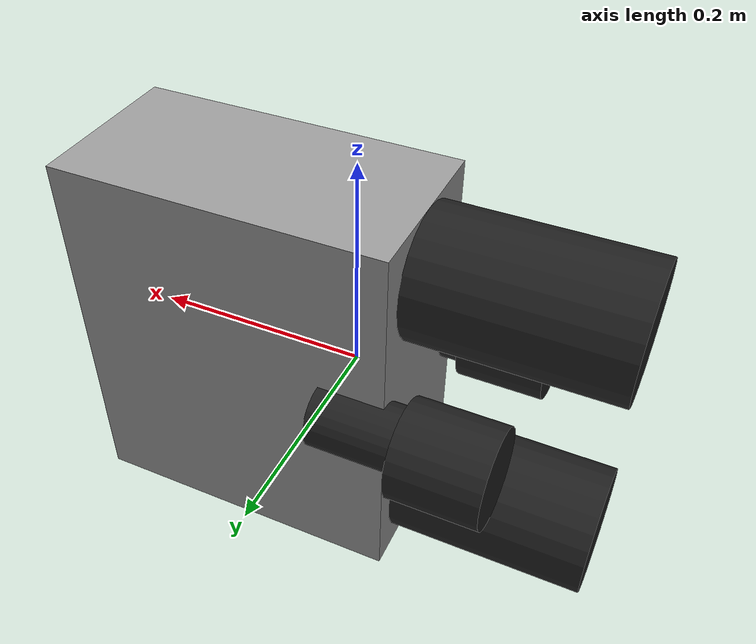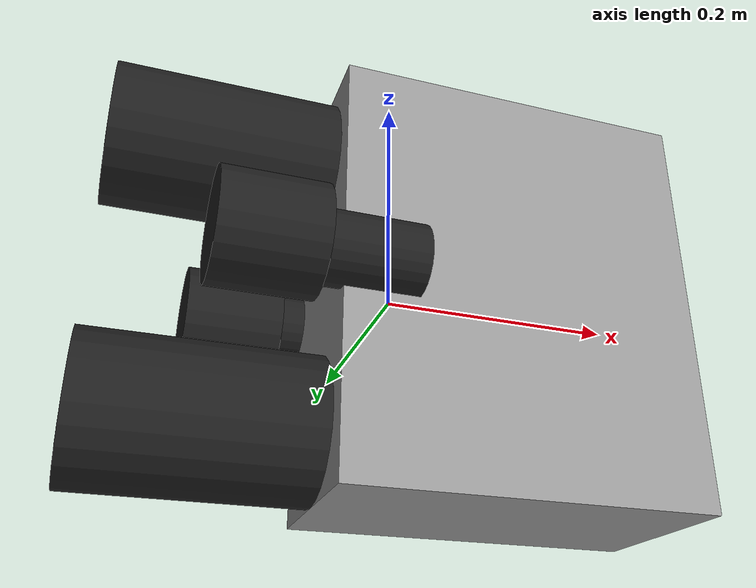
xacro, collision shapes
<?xml version="1.0"?>
<robot name="x3_rov" xmlns:xacro="http://www.ros.org/wiki/xacro">

	<!-- includes -->
	<xacro:include filename="$(find x3_sim)/urdf/helpers.xacro" />
	<xacro:include filename="$(find x3_sim)/urdf/x3_components.xacro" />
	<xacro:include filename="$(find x3_sim)/urdf/x3_sensors.xacro" />

	<!-- properties/variables -->
	<xacro:arg name="debug" default="0"/>
	<xacro:arg name="namespace" default="x3_rov"/>
	<xacro:arg name="inertial_reference_frame" default="world"/>
	<xacro:property name="neutrally_buoyant" value="0" />

	<xacro:property name="x3_length" value="0.485" />
	<xacro:property name="x3_width"  value="0.257" />
	<xacro:property name="x3_height" value="0.354" />

	<!-- center of balance xyz -->
	<xacro:property name="x3_cobx"	 value="0.023465" />
	<xacro:property name="x3_coby"	 value="0"        />
	<xacro:property name="x3_cobz"	 value="0.06848"  />
	<xacro:property name="x3_cob"	 value="${x3_cobx} ${x3_coby} ${x3_cobz}" />
	<xacro:property name="x3_mass"   value="8.6" />      <!-- kg -->
	<!-- calculations are based roughly on volume distribution -->
	<xacro:property name="x3_m_main"     value="${x3_mass * 0.66}" />
	<xacro:property name="x3_m_fin"      value="${x3_mass * 0.14}" />
	<xacro:property name="x3_m_thruster" value="${x3_mass * 0.03}" />

	<!-- * * * LINK DEFINITIONS * * * -->

	<!-- Dummy link to suppress warnings about root link inertia -->
	<!-- VERY IMPORTANT! Base link NEEDS to be target of hydrodynamic calculations -->
	<link name="$(arg namespace)/base_link">
	</link>

	<link name="$(arg namespace)/x3_rov_link">
		<xacro:box_inertial
			mass="${x3_mass}"
			x="${x3_length}"
			y="${x3_width * 4/5}"
			z="${x3_height}"
		>
			<origin xyz="0 0 0" rpy="0 0 0"/>
		</xacro:box_inertial>

		<collision>
			<origin xyz="${x3_length * 3/16} 0 0" rpy="0 0 0"/>
			<geometry>
				<box size="${x3_length * 5/8} ${x3_width * 3/5} ${x3_height}"/>
			</geometry>
		</collision>

		<visual>
			<origin xyz="0 0 0" rpy="0 0 0"/>
			<geometry>
				<mesh filename="package://x3_sim/models/x3_low_poly_smoothed.dae"/>
			</geometry>
			<material name="grey"/>
		</visual>
	</link>

	<!-- Attaching body to dummy link -->
	<joint name="$(arg namespace)/base_joint" type="fixed">
		<parent link="$(arg namespace)/base_link"/>
		<child link="$(arg namespace)/x3_rov_link"/>
	</joint>

	<!-- top fin -->
	<xacro:x3_fin
		suffix="top"
		parent_link="$(arg namespace)/base_link"
		origin_xyz="0 0 ${x3_height*(1/2 - 1/6)}"
		mass="1e-5"
		radius="${x3_height * 1/6}"
		length="${x3_length/2}"
	/>
	<!-- bottom fin -->
	<xacro:x3_fin
		suffix="bot"
		parent_link="$(arg namespace)/base_link"
		origin_xyz="0 0 ${-x3_height*(1/2 - 1/6)}"
		mass="1e-5"
		radius="${x3_height * 1/6}"
		length="${x3_length/2}"
	/>
	<!-- left thruster -->
	<xacro:x3_thruster
		suffix="left"
		parent_link="$(arg namespace)/base_link"
		origin_xyz="0 ${x3_width * 3/10} 0"
		mass="1e-5"
		radius="${x3_height * 1/8}"
		length="${x3_length * 1/3}"
		mirror="1"
	/>
	<!-- right thruster -->
	<xacro:x3_thruster
		suffix="right"
		parent_link="$(arg namespace)/base_link"
		origin_xyz="0 ${-(x3_width * 3/10)} 0"
		mass="1e-5"
		radius="${x3_height * 1/8}"
		length="${x3_length * 1/3}"
		mirror="-1"
	/>

	<!-- * * * SENSOR DEFINITIONS * * * -->

	<!-- camera -->
	<xacro:x3_camera
		suffix="1"
		parent_link="$(arg namespace)/base_link"
		update_rate="30"
		img_width="1920"
		img_height="1080">
	<origin xyz="${x3_length*48/100} 0 ${x3_height*26/100}" rpy="0 0 0"/>
	</xacro:x3_camera>

	<!-- imu -->
	<xacro:x3_imu
      namespace="$(arg namespace)"
      parent_link="$(arg namespace)/base_link"
	  update_rate="100"
	  enable_local_ned_frame="false"
	  reference_frame="world">	<!-- (false,world), (true,world_ned)-->
	  <origin xyz="0.1239 -0.0442 -0.1173" rpy="0 0 0"/>
    </xacro:x3_imu>

	<!-- magnetometer -->
	<xacro:x3_magnetometer
      namespace="$(arg namespace)"
      parent_link="$(arg namespace)/base_link"
	  update_rate="100">
	  <origin xyz="0.1239 -0.0442 -0.1173" rpy="0 0 0"/>
    </xacro:x3_magnetometer>

	<!-- pressure sensor -->
	<xacro:x3_pressure
      namespace="$(arg namespace)"
      parent_link="$(arg namespace)/base_link"
	  update_rate="42">
	  <origin xyz="0.0547 -0.0008 -0.0951" rpy="0 0 0"/>
    </xacro:x3_pressure>

	<!-- THRUSTER DEFINITIONS -->

	<!-- Port-Aft (left-back)-->
	<xacro:thruster_macro thruster_id="0">
		<origin xyz="${-x3_length * 21/80} ${ (x3_width * 31/100)} 0" rpy="0 0 ${pi}"/>
	</xacro:thruster_macro>

	<!-- Stbd-Aft (right-back)-->
	<xacro:thruster_macro thruster_id="1">
		<origin xyz="${-x3_length * 21/80} ${-(x3_width * 31/100)} 0" rpy="0 0 ${pi}"/>
	</xacro:thruster_macro>

	<!-- Middle-Vert -->
	<xacro:thruster_macro thruster_id="2">
		<origin xyz="0 0 ${x3_height*(1/2 - 1/6)}" rpy="0 ${-pi/2} 0"/>
	</xacro:thruster_macro>

	<!-- Middle-Lat -->
	<xacro:thruster_macro thruster_id="3">
		<origin xyz="${x3_cobz + 0.02} 0 0" rpy="0 0 ${pi/2}"/>
	</xacro:thruster_macro>

	<!-- Creating hydrodynamic model of the system -->
	<xacro:rov_hydro_model
		parent_link="$(arg namespace)/base_link"
		mass="${x3_mass}"
		length="${x3_length}"
		width="${x3_width}"
		height="${x3_height}"
		cob="${x3_cob}"
		neutrally_buoyant="${neutrally_buoyant}"
	/>

	<!-- * * * GAZEBO CONFIGURATION * * * -->

	<gazebo>
		<plugin name="gazebo_ros_control" filename="libgazebo_ros_control.so">
			<robotNamespace>/$(arg namespace)</robotNamespace>
			<robotParam>/$(arg namespace)/robot_description</robotParam>
		</plugin>
		<!-- Default joint state publisher -->
		<plugin name="uuv_joint_state_publisher" filename="libuuv_joint_state_publisher.so">
			<robotNamespace>$(arg namespace)</robotNamespace>
			<updateRate>50</updateRate>
		</plugin>
	</gazebo>

</robot>

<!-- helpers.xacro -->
<robot name="macro_helpers" xmlns:xacro="http://www.ros.org/wiki/xacro">

	<!-- properties/variables -->
	<xacro:arg name="debug" default="0"/>
	<xacro:arg name="namespace" default="x3_rov"/>
	<xacro:arg name="inertial_reference_frame" default="world"/>

	<!-- * * * inertial calculations * * * -->
	<!-- source: -->
	<!-- https://github.com/ros-industrial/universal_robot/blob/06d8b9e2f5f86aa54f9f2845f11edbc84e2f951e/ur_description/urdf/ur10.urdf.xacro#L12-L20 -->

	<!-- cylinder -->
	<xacro:macro name="cylinder_inertial" params="*origin mass radius length">
		<inertial>
		<mass value="${mass}" />
				<xacro:insert_block name="origin" />
		<inertia
			ixx="${0.0833333 * mass * (3 * radius * radius + length * length)}" ixy="0.0" ixz="0.0"
			iyy="${0.0833333 * mass * (3 * radius * radius + length * length)}" iyz="0.0"
			izz="${0.5 * mass * radius * radius}"
				/>
		</inertial>
  	</xacro:macro>

	<!-- adds inertia block with negligible values -->
	<xacro:macro name="no_inertia">
		<xacro:box_inertial
			mass="1e-4"
			x="1e-4"
			y="1e-4"
			z="1e-4">
		<origin xyz="0 0 0" rpy="0 0 0"/>
		</xacro:box_inertial>
	</xacro:macro>

	<!-- adds collision with negligible values -->
	<xacro:macro name="no_collision">
		<collision>
			<geometry>
				<cylinder length="${0.000001}" radius="${0.000001}" />
			</geometry>
			<origin xyz="0 0 0" rpy="0 ${0.5*pi} 0"/>
		</collision>
	</xacro:macro>

</robot>

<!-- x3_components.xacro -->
<robot name="x3_components" xmlns:xacro="http://www.ros.org/wiki/xacro">

	<!-- includes -->
	<xacro:include filename="$(find x3_sim)/urdf/helpers.xacro" />

	<!-- properties/variables -->
	<xacro:arg name="debug" default="0"/>
	<xacro:arg name="namespace" default="x3_rov"/>
	<xacro:arg name="inertial_reference_frame" default="world"/>

	<!-- * * * hydrodynamic_model * * * -->
	<xacro:macro name="rov_hydro_model" params="parent_link mass length width height cob neutrally_buoyant">

		<gazebo>
			<plugin name="uuv_plugin" filename="libuuv_underwater_object_ros_plugin.so">
				<!-- Hydro parameters for the vehicle-->
				<fluid_density>1025.0</fluid_density>
				<flow_velocity_topic>hydrodynamics/current_velocity</flow_velocity_topic>
				<debug>$(arg debug)</debug>

				<link name="${parent_link}">
					<neutrally_buoyant>${neutrally_buoyant}</neutrally_buoyant>
					<volume>${mass/1025}</volume>
					<box>
						<width>${width}</width>
						<length>${length}</length>
						<height>${height}</height>
					</box>
					<center_of_buoyancy>${cob}</center_of_buoyancy>
					<hydrodynamic_model>
						<type>fossen</type>
						<added_mass>
						<!-- from papers fault tolerant observer design Mokleiv2017 -->
						<!-- and blueye pioneer bellingmo2020 -->
						<!-- some values are only estimations -->
							5.22     0     0    0    0    0
						   	   0 19.87     0    0    0    0
						   	   0 	 0 12.02    0    0    0
						   	   0     0     0 0.16    0    0
						   	   0     0     0    0 0.07    0
						   	   0     0     0    0    0 0.16
						</added_mass>
						<!-- Linear damping: see p.31 in Berg2012 -->
						<linear_damping>
						 -1.843 -3.1802 -0.3778 -0.0868 -0.04 -0.0868
						</linear_damping>
						<!-- Non-linear damping: see p.30 in Berg2012 -->
					</hydrodynamic_model>
				</link>
			</plugin>
		</gazebo>
	</xacro:macro>

	<!-- Thruster macro -->
	<xacro:include filename="$(find uuv_descriptions)/urdf/common.urdf.xacro"/>
	<xacro:include filename="$(find uuv_gazebo_ros_plugins)/urdf/thruster_snippets.xacro"/>
	<!-- Thruster model -->
	<xacro:property name="thruster_mesh_file" value="file://$(find x3_sim)/models/x3_low_poly_propeller.dae"/>
	<!-- Wrapper for thruster macro -->
	<xacro:macro name="thruster_macro" params="thruster_id *origin">
		<xacro:thruster_module_first_order_basic_fcn_macro
			namespace="$(arg namespace)"
			thruster_id="${thruster_id}"
			mesh_filename="${thruster_mesh_file}"
			dyn_time_constant="0.05"
			rotor_constant="0.000031"
			>
			<xacro:insert_block name="origin"/>
		</xacro:thruster_module_first_order_basic_fcn_macro>
	</xacro:macro>

	<!-- * * * macros for creating links * * * -->

	<!-- create fin and attach to parent -->
	<xacro:macro name="x3_fin" params="suffix parent_link origin_xyz mass radius length">
		<link name="$(arg namespace)/fin_${suffix}_link">
			<xacro:cylinder_inertial
				mass="${mass}"
				radius="${radius}"
				length="${length}" >
				<origin xyz="${-length/2} 0 0" rpy="0 ${pi/2} 0"/>
			</xacro:cylinder_inertial>
			<collision>
				<origin xyz="${-length/2} 0 0" rpy="0 ${pi/2} 0"/>
				<geometry>
					<cylinder radius="${radius}" length="${length}"/>
				</geometry>
			</collision>
			<visual>
				<origin rpy="0 ${pi/2} 0" xyz="${-length/2} 0 0"/>
				<geometry>
					<cylinder radius="1e-5" length="1e-5"/>
				</geometry>
				<material name="black"/>
			</visual>
		</link>

		<joint name="$(arg namespace)/fin_${suffix}_joint" type="fixed">
			<parent link="${parent_link}"/>
			<child link="$(arg namespace)/fin_${suffix}_link"/>
			<origin xyz="${origin_xyz}" rpy="0 0 0"/>
			<axis xyz="0 0 0"/>
		</joint>

	</xacro:macro>

	<!-- create thruster housing and attach to parent -->
	<xacro:macro name="x3_thruster" params="suffix parent_link origin_xyz mass radius length mirror">
		<link name="$(arg namespace)/thruster_conn_${suffix}_link">
			<xacro:cylinder_inertial
				mass="${mass * 1/3}"
				radius="${radius * 2/3}"
				length="${length/2}" >
				<origin xyz="${-length/4} 0 0" rpy="0 ${pi/2} 0"/>
			</xacro:cylinder_inertial>
			<collision>
				<origin xyz="${-length/4} 0 0" rpy="0 ${pi/2} 0"/>
				<geometry>
					<cylinder radius="${radius * 2/3}" length="${length/2}"/>
				</geometry>
			</collision>
			<visual>
				<origin xyz="${-length/4} 0 0" rpy="0 ${pi/2} 0" />
				<geometry>
					<cylinder radius="1e-5" length="1e-5"/>
				</geometry>
				<material name="black"/>
			</visual>
		</link>

		<joint name="$(arg namespace)/thruster_conn_${suffix}_joint" type="fixed">
			<parent link="${parent_link}"/>
			<child link="$(arg namespace)/thruster_conn_${suffix}_link"/>
			<origin xyz="${origin_xyz}" rpy="0 0 0"/>
			<axis xyz="0 0 0"/>
		</joint>

		<link name="$(arg namespace)/thruster_body_${suffix}_link">
			<xacro:cylinder_inertial
				mass="${mass * 2/3}"
				radius="${radius}"
				length="${length/2}" >
				<origin xyz="${-length/4} 0 0" rpy="0 ${pi/2} 0"/>
			</xacro:cylinder_inertial>
			<collision>
				<origin xyz="${-length/4} 0 0" rpy="0 ${pi/2} 0"/>
				<geometry>
					<cylinder radius="${radius}" length="${length/2}"/>
				</geometry>
			</collision>
			<visual>
				<origin xyz="${-length/4} 0 0" rpy="0 ${pi/2} 0"/>
				<geometry>
					<cylinder radius="1e-5" length="1e-5"/>
				</geometry>
				<material name="black"/>
			</visual>
		</link>
		<joint name="$(arg namespace)/thruster_body_${suffix}_joint" type="fixed">
			<parent link="$(arg namespace)/thruster_conn_${suffix}_link"/>
			<child link="$(arg namespace)/thruster_body_${suffix}_link"/>
			<origin xyz="${-length/2} ${mirror * radius * 1/8} 0" rpy="0 0 0"/>
			<axis xyz="0 0 0"/>
		</joint>
	</xacro:macro>

</robot>

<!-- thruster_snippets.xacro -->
<robot xmlns:xacro="http://www.ros.org/wiki/xacro">

  <!-- ROTOR DYNAMICS MACROS -->

  <!-- First order dynamics -->

  <xacro:macro name="rotor_dyn_first_order_macro" params="time_constant">
    <dynamics>
      <type>FirstOrder</type>
      <timeConstant>${time_constant}</timeConstant>
    </dynamics>
  </xacro:macro>

  <!--
    MACROS FOR CONVERSION FUNCTIONS BETWEEN ROTOR'S ANG. VELOCITY AND
    THRUSTER FORCE
  -->

  <!--
    1) Basic curve
      Input: x
      Output: thrust
      Function: thrust = rotorConstant * x * abs(x)
  -->
  <xacro:macro name="thruster_cf_basic_macro"
    params="rotor_constant">
    <conversion>
      <type>Basic</type>
      <rotorConstant>${rotor_constant}</rotorConstant>
    </conversion>
  </xacro:macro>

  <xacro:macro name="thruster_cf_dead_zone_macro"
    params="rotor_constant_l
            rotor_constant_r
            delta_l
            delta_r">
    <conversion>
      <type>Bessa</type>
      <rotorConstantL>${rotor_constant_l}</rotorConstantL>
      <rotorConstantR>${rotor_constant_r}</rotorConstantR>
      <deltaL>${delta_l}</deltaL>
      <deltaR>${delta_r}</deltaR>
    </conversion>
  </xacro:macro>

  <xacro:macro name="thruster_cf_linear_interp_macro"
    params="input_values
            output_values">
    <conversion>
      <type>LinearInterp</type>
      <inputValues>${input_values}</inputValues>
      <outputValues>${output_values}</outputValues>
    </conversion>
  </xacro:macro>

  <!-- THRUSTER MODULE MACROS  -->

  <xacro:macro name="generic_thruster_macro"
    params="namespace
            thruster_id
            *origin
            mesh_filename
            *dynamics
            *conversion">
    <joint name="${namespace}/thruster_${thruster_id}_joint" type="continuous">
      <xacro:insert_block name="origin"/>
      <axis xyz="1 0 0"/>
      <parent link="${namespace}/base_link"/>
      <child link="${namespace}/thruster_${thruster_id}"/>
    </joint>

    <link name="${namespace}/thruster_${thruster_id}">
      <xacro:box_inertial x="0" y="0" z="0" mass="0.001">
        <origin xyz="0 0 0" rpy="0 0 0"/>
      </xacro:box_inertial>
      <visual>
        <origin rpy="0 0 0" xyz="0 0 0"/>
        <geometry>
          <mesh filename="${mesh_filename}" scale="1 1 1"/>
        </geometry>
      </visual>
      <collision>
        <!-- todo: gazebo needs a collision volume or it will ignore the pose of
           the joint that leads to this link (and assume it to be the identity) -->
        <geometry>
          <cylinder length="0.000001" radius="0.000001"/>
        </geometry>
        <origin xyz="0 0 0" rpy="0 0 0"/>
      </collision>
    </link>

    <gazebo>
      <plugin name="${namespace}_${thruster_id}_thruster_model" filename="libuuv_thruster_ros_plugin.so">
        <linkName>${namespace}/thruster_${thruster_id}</linkName>
        <jointName>${namespace}/thruster_${thruster_id}_joint</jointName>
        <thrusterID>${thruster_id}</thrusterID>
        <xacro:insert_block name="dynamics"/>
        <xacro:insert_block name="conversion"/>
      </plugin>
    </gazebo>

    <gazebo reference="${namespace}/thruster_${thruster_id}">
      <selfCollide>false</selfCollide>
    </gazebo>
  </xacro:macro>

  <!--
    Thruster model with first order dynamic model for the rotor dynamics
    and a proportional non-linear steady-state conversion from the rotor's
    angular velocity to output thrust force
  -->

  <xacro:macro name="thruster_module_first_order_basic_fcn_macro"
      params="namespace
              thruster_id
              *origin
              mesh_filename
              dyn_time_constant
              rotor_constant">
    <xacro:generic_thruster_macro
      namespace="${namespace}"
      thruster_id="${thruster_id}"
      mesh_filename="${mesh_filename}">
      <xacro:insert_block name="origin"/>
      <xacro:rotor_dyn_first_order_macro time_constant="${dyn_time_constant}"/>
      <xacro:thruster_cf_basic_macro rotor_constant="${rotor_constant}"/>
    </xacro:generic_thruster_macro>
  </xacro:macro>

</robot>

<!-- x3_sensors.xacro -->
<robot name="x3_sensors" xmlns:xacro="http://www.ros.org/wiki/xacro">

	<!-- includes -->
	<xacro:include filename="$(find x3_sim)/urdf/helpers.xacro" />

	<!-- properties/variables -->
	<xacro:arg name="debug" default="0"/>
	<xacro:arg name="namespace" default="x3_rov"/>
	<xacro:arg name="inertial_reference_frame" default="world"/>

	<!-- All macros here are based off uf uuv sensor snippets with some modifications -->

	<!-- camera macro -->
	<xacro:macro name="x3_camera" params="parent_link suffix update_rate img_width img_height *origin">
		<link name="$(arg namespace)/camera${suffix}_link">
			<xacro:no_inertia/>
			<visual>
				<origin xyz="0 0 0" rpy="0 0 0"/>
				<geometry>
				<box size="1e-4 1e-4 1e-4"/>
				</geometry>
			</visual>

			<collision>
				<origin xyz="0 0 0" rpy="0 0 0"/>
				<geometry>
				<box size="1e-4 1e-4 1e-4"/>
				</geometry>
			</collision>
		</link>

		<joint name="$(arg namespace)/camera${suffix}_joint" type="revolute">
			<parent link="${parent_link}"/>
			<child link="$(arg namespace)/camera${suffix}_link"/>

			<xacro:insert_block name="origin" />
			<axis xyz="0 1 0"/>
			<limit effort="1e-12" lower="${-pi/6}" upper="${pi/6}" velocity="0.5"/>
		</joint>

		<transmission name="$(arg namespace)/camera${suffix}/trans">
			<type>transmission_interface/SimpleTransmission</type>
			<joint name="$(arg namespace)/camera${suffix}_joint">
				<hardwareInterface>hardware_interface/EffortJointInterface</hardwareInterface>
			</joint>
			<actuator name="$(arg namespace)/camera${suffix}/motor">
				<hardwareInterface>hardware_interface/EffortJointInterface</hardwareInterface>
				<mechanicalReduction>1</mechanicalReduction>
			</actuator>
		</transmission>

		<gazebo reference="$(arg namespace)/camera${suffix}_link">
			<sensor type="camera" name="camera${suffix}_link">
				<update_rate>${update_rate}</update_rate>
				<camera name="camera${suffix}_link">
				<vertical_fov>115</vertical_fov>
				<image>
					<width>${img_width}</width>
					<height>${img_height}</height>
					<format>R8G8B8</format>
				</image>
				<clip>
					<near>0.05</near>
					<far>300</far>
				</clip>
				<noise>
					<type>gaussian</type>
					<mean>0.0</mean>
					<stddev>0.007</stddev>
				</noise>
				</camera>
				<plugin name="camera${suffix}_controller" filename="libgazebo_ros_camera.so">
				<updateRate>30</updateRate>

				<cameraName>x3_cam</cameraName>
				<frameName>$(arg namespace)/camera${suffix}_link</frameName>
				<imageTopicName>image_raw</imageTopicName>
				<cameraInfoTopicName>camera_info</cameraInfoTopicName>

				<hackBaseline>0.7</hackBaseline>

				<distortionK1>0.0</distortionK1>
				<distortionK2>0.0</distortionK2>
				<distortionK3>0.0</distortionK3>
				<distortionT1>0.0</distortionT1>
				<distortionT2>0.0</distortionT2>

				<attenuationR>0.0</attenuationR>
				<attenuationG>0.0</attenuationG>
				<attenuationB>0.0</attenuationB>

				<backgroundR>0</backgroundR>
				<backgroundG>0</backgroundG>
				<backgroundB>0</backgroundB>

				<imageTopicName>image_raw</imageTopicName>

				<!-- required for ros depth cam -->
				</plugin>
			</sensor>
		</gazebo>
	</xacro:macro>

	<!-- IMU macro -->
	<xacro:macro name="x3_imu"
		params="namespace parent_link update_rate enable_local_ned_frame reference_frame *origin">
		<!-- IMU link -->
		<link name="${namespace}/imu_link">
			<xacro:no_inertia/>
		</link>

		<!-- IMU joint -->
		<joint name="${namespace}/imu_joint" type="revolute">
			<xacro:insert_block name="origin" />
			<parent link="${parent_link}" />
			<child link="${namespace}/imu_link" />
			<limit upper="0" lower="0" effort="0" velocity="0" />
			<axis xyz="1 0 0"/>
		</joint>

		<gazebo>
			<plugin filename="libuuv_gazebo_ros_imu_plugin.so" name="libuuv_gazebo_imu_plugin">
			<!-- A good description of the IMU parameters can be found in the kalibr documentation:
				https://github.com/ethz-asl/kalibr/wiki/IMU-Noise-Model-and-Intrinsics -->
				<robot_namespace>${namespace}</robot_namespace> <!-- (string, required): ros namespace in which the messages are published -->
				<link_name>${namespace}/imu_link</link_name> <!-- (string, required): name of the body which holds the IMU sensor -->
				<sensor_topic>imu</sensor_topic> <!-- (string): name of the sensor output topic and prefix of service names (defaults to imu) -->

				<gyroscope_noise_density>0.0003394</gyroscope_noise_density> <!-- Gyroscope noise density (two-sided spectrum) [rad/s/sqrt(Hz)] -->
				<gyroscope_random_walk>0.000038785</gyroscope_random_walk> <!-- Gyroscope bias random walk [rad/s/s/sqrt(Hz)] -->
				<gyroscope_bias_correlation_time>1000.0</gyroscope_bias_correlation_time> <!-- Gyroscope bias correlation time constant [s] -->
				<gyroscope_turn_on_bias_sigma>0.0087</gyroscope_turn_on_bias_sigma> <!-- Gyroscope turn on bias standard deviation [rad/s] -->

				<accelerometer_noise_density>0.004</accelerometer_noise_density> <!-- Accelerometer noise density (two-sided spectrum) [m/s^2/sqrt(Hz)] -->
				<accelerometer_random_walk>0.006</accelerometer_random_walk> <!-- Accelerometer bias random walk. [m/s^2/s/sqrt(Hz)] -->
				<accelerometer_bias_correlation_time>300.0</accelerometer_bias_correlation_time> <!-- Accelerometer bias correlation time constant [s] -->
				<accelerometer_turn_on_bias_sigma>0.1960</accelerometer_turn_on_bias_sigma> <!-- Accelerometer turn on bias standard deviation [m/s^2] -->
				<orientation_noise>0.01</orientation_noise>

				<update_rate>${update_rate}</update_rate> <!-- Update period of accelerometer and gyroscope [s] -->
				<enable_gazebo_messages>false</enable_gazebo_messages>
				<enable_local_ned_frame>${enable_local_ned_frame}</enable_local_ned_frame>
				<static_reference_frame>${reference_frame}</static_reference_frame>
			</plugin>
		</gazebo>
	</xacro:macro>

	<!-- magnetometer macro -->
	<xacro:macro name="x3_magnetometer" params="namespace parent_link update_rate *origin">
		<!-- Sensor link -->
		<link name="${namespace}/magnetometer_link">
			<xacro:no_inertia/>
		</link>

		<!-- Sensor joint -->
		<joint name="${namespace}/magnetometer_joint" type="revolute">
			<xacro:insert_block name="origin" />
			<parent link="${parent_link}" />
			<child link="${namespace}/magnetometer_link" />
			<limit upper="0" lower="0" effort="0" velocity="0" />
			<axis xyz="1 0 0"/>
		</joint>

		<gazebo>
			<plugin filename="libuuv_gazebo_ros_magnetometer_plugin.so" name="libuuv_gazebo_ros_magnetometer_plugin">
				<robot_namespace>${namespace}</robot_namespace> <!-- (string, required): ros namespace in which the messages are published -->
				<link_name>${namespace}/magnetometer_link</link_name> <!-- (string, required): name of the body which holds the IMU sensor -->
				<sensor_topic>magnetometer</sensor_topic> <!-- (string): name of the sensor output topic and prefix of service names (defaults to imu) -->
				<update_rate>${update_rate}</update_rate> <!-- Update period of accelerometer and gyroscope [s] -->

				<intensity>65.0</intensity> <!-- magnitude of magnetic field [muT] -->
				<reference_heading>${pi}</reference_heading> <!-- reference heading [rad] -->
				<declination>0.0</declination> <!-- reference declination [rad] -->
				<inclination>${pi*60/180}</inclination> <!-- refernce inclination [rad] -->
				<noise_xy>1.0</noise_xy> <!-- Discrete-time std. dev. of output noise in xy-axis [muT] -->
				<noise_z>1.4</noise_z> <!-- Discrete-time std. dev. of output noise in z-axis [muT] -->
				<turn_on_bias>2.0</turn_on_bias> <!-- Std. dev. of turn-on-bias [muT] -->
				<noise_amplitude>0</noise_amplitude>

				<enable_gazebo_messages>false</enable_gazebo_messages>
				<enable_local_ned_frame>false</enable_local_ned_frame>
			</plugin>
		</gazebo>
	</xacro:macro>

	<!-- pressure macro -->
	<xacro:macro name="x3_pressure" params="namespace parent_link update_rate *origin">
		<!-- Sensor link -->
		<link name="${namespace}/pressure_link">
			<xacro:no_inertia/>
		</link>

		<joint name="${namespace}/pressure_joint" type="revolute">
			<xacro:insert_block name="origin" />
			<parent link="${parent_link}" />
			<child link="${namespace}/pressure_link" />
			<limit upper="0" lower="0" effort="0" velocity="0" />
			<axis xyz="1 0 0"/>
		</joint>

		<gazebo>
			<plugin filename="libuuv_gazebo_ros_subsea_pressure_plugin.so" name="libuuv_gazebo_subseapressure_plugin">
				<robot_namespace>${namespace}</robot_namespace> <!-- (string, required): ros namespace in which the messages are published -->
				<link_name>${namespace}/pressure_link</link_name> <!-- (string, required): name of the body which holds the IMU sensor -->
				<sensor_topic>pressure</sensor_topic> <!-- (string): name of the sensor output topic and prefix of service names (defaults to imu) -->
				<update_rate>${update_rate}</update_rate> <!-- Update period of accelerometer and gyroscope [s] -->

				<saturation>30000</saturation> <!-- measurement range [kPa] -->
				<noise_sigma>3.0</noise_sigma> <!-- measurement stddev [kPa] -->
				<noise_amplitude>0.0</noise_amplitude>
				<estimate_depth_on>false</estimate_depth_on> <!-- infer depth? -->
				<standard_pressure>101.325</standard_pressure> <!-- pressure at sea level (depth 0 m) [kPa] -->
				<kPa_per_meter>9.80638</kPa_per_meter> <!-- increase in pressure [kPa] per [m] in increased depth -->
				<enable_gazebo_messages>false</enable_gazebo_messages>
			</plugin>
		</gazebo>
	</xacro:macro>
</robot>
